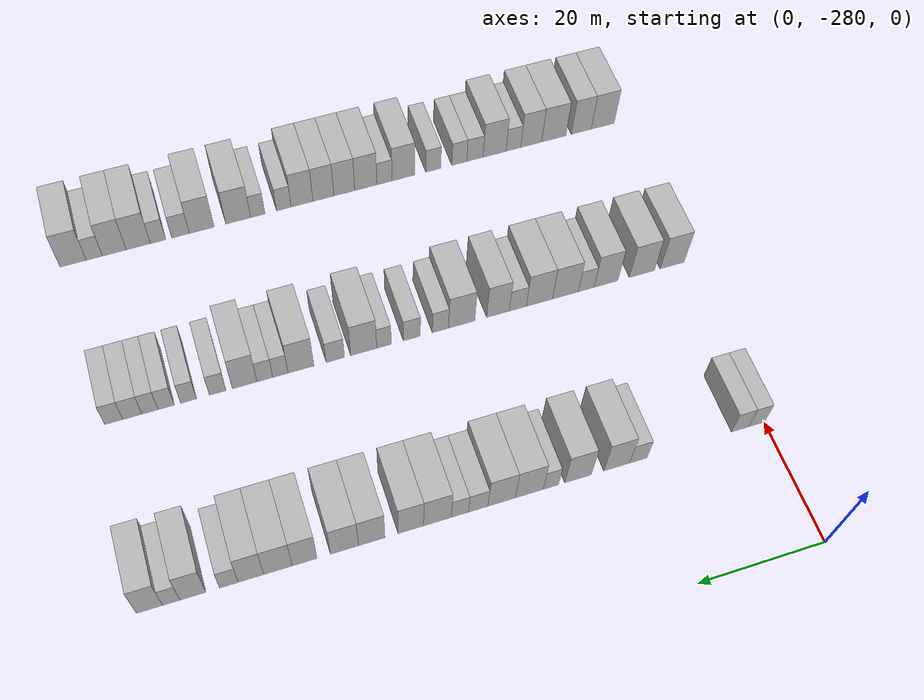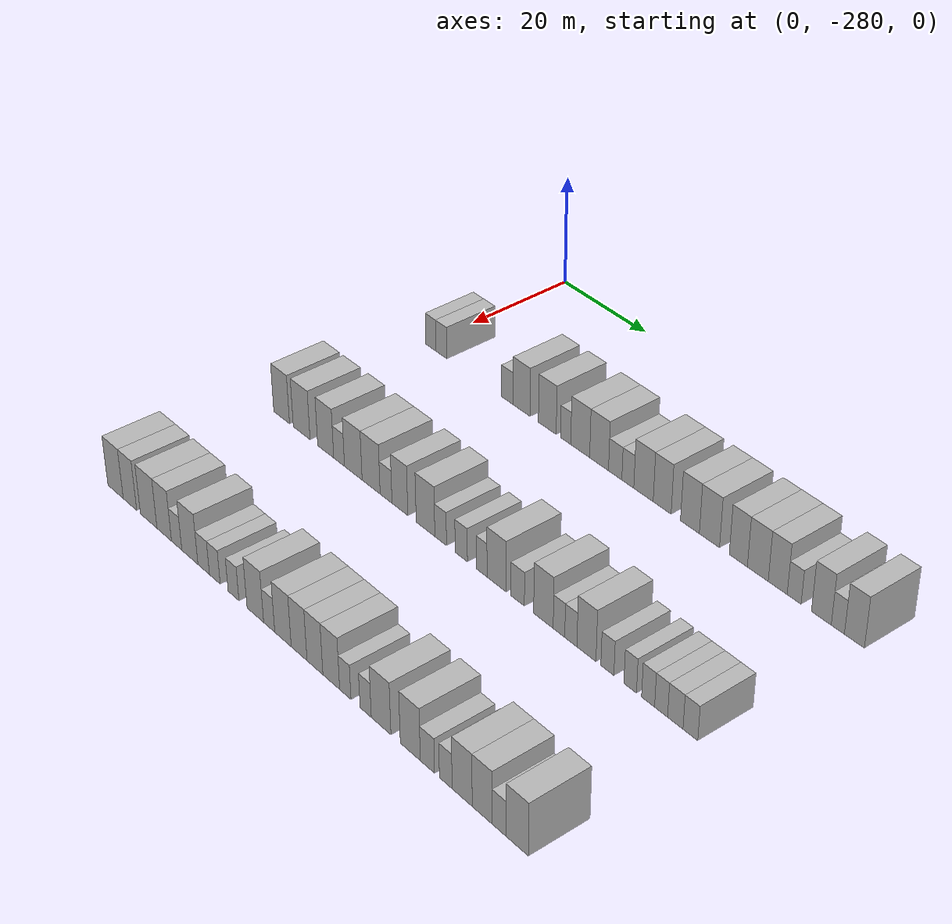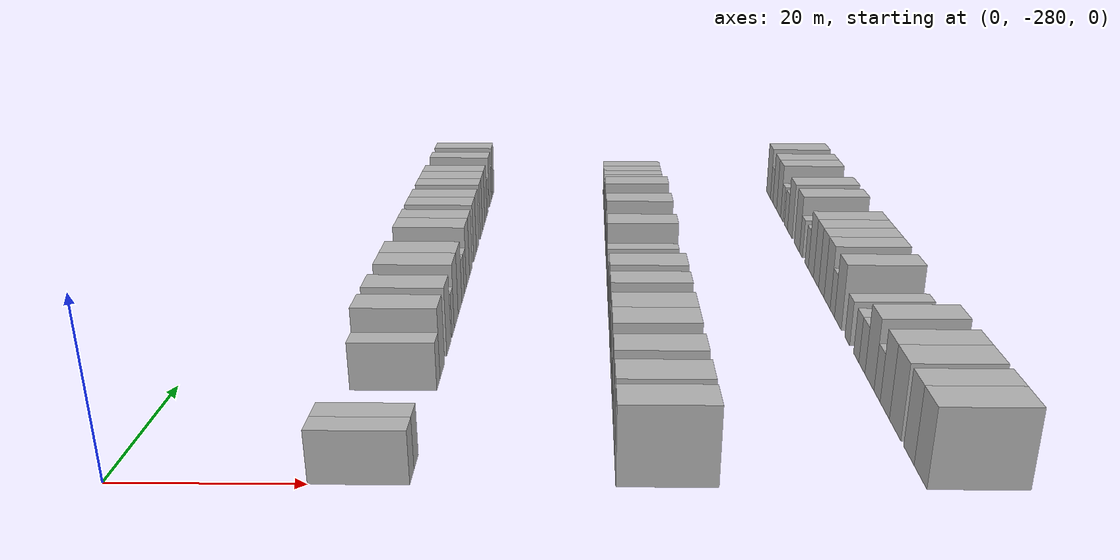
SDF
<sdf version="1.6">
 <world name="default">
  <model name="building_1">
   <static>1</static>
   <pose>25.0000 -278.6719 0 0.000000 0.000000 0.000000</pose>
   <link name="link">
    <pose>0 0 3.00 0 0 0</pose>
    <collision name="collision"><geometry><box><size>10.0000 2.6562 6.0000</size></box></geometry></collision>
    <visual name="visual">
     <cast_shadows>0</cast_shadows>
     <geometry><box><size>10.0000 2.6562 6.0000</size></box></geometry>
     <material>
      <script>
       <uri>model://HANNAS_wall/materials/scripts</uri>
       <uri>model://HANNAS_wall/materials/textures</uri>
       <name>vrc/HANNAS_wall</name>
      </script>
     </material>
    </visual>
   </link>
  </model>
  <model name="building_2">
   <static>1</static>
   <pose>25.0000 -275.9168 0 0.000000 0.000000 0.000000</pose>
   <link name="link">
    <pose>0 0 3.00 0 0 0</pose>
    <collision name="collision"><geometry><box><size>10.0000 2.8541 6.0000</size></box></geometry></collision>
    <visual name="visual">
     <cast_shadows>0</cast_shadows>
     <geometry><box><size>10.0000 2.8541 6.0000</size></box></geometry>
     <material>
      <script>
       <uri>model://HANNAS_wall/materials/scripts</uri>
       <uri>model://HANNAS_wall/materials/textures</uri>
       <name>vrc/HANNAS_wall</name>
      </script>
     </material>
    </visual>
   </link>
  </model>
  <model name="building_3">
   <static>1</static>
   <pose>25.0000 -259.2466 0 0.000000 0.000000 0.000000</pose>
   <link name="link">
    <pose>0 0 3.00 0 0 0</pose>
    <collision name="collision"><geometry><box><size>10.0000 2.8287 6.0000</size></box></geometry></collision>
    <visual name="visual">
     <cast_shadows>0</cast_shadows>
     <geometry><box><size>10.0000 2.8287 6.0000</size></box></geometry>
     <material>
      <script>
       <uri>model://HANNAS_wall/materials/scripts</uri>
       <uri>model://HANNAS_wall/materials/textures</uri>
       <name>vrc/HANNAS_wall</name>
      </script>
     </material>
    </visual>
   </link>
  </model>
  <model name="building_4">
   <static>1</static>
   <pose>25.0000 -255.7663 0 0.000000 0.000000 0.000000</pose>
   <link name="link">
    <pose>0 0 4.50 0 0 0</pose>
    <collision name="collision"><geometry><box><size>10.0000 4.1318 9.0000</size></box></geometry></collision>
    <visual name="visual">
     <cast_shadows>0</cast_shadows>
     <geometry><box><size>10.0000 4.1318 9.0000</size></box></geometry>
     <material>
      <script>
       <uri>model://HANNAS_wall/materials/scripts</uri>
       <uri>model://HANNAS_wall/materials/textures</uri>
       <name>vrc/HANNAS_wall</name>
      </script>
     </material>
    </visual>
   </link>
  </model>
  <model name="building_5">
   <static>1</static>
   <pose>25.0000 -249.5898 0 0.000000 0.000000 0.000000</pose>
   <link name="link">
    <pose>0 0 4.50 0 0 0</pose>
    <collision name="collision"><geometry><box><size>10.0000 4.2212 9.0000</size></box></geometry></collision>
    <visual name="visual">
     <cast_shadows>0</cast_shadows>
     <geometry><box><size>10.0000 4.2212 9.0000</size></box></geometry>
     <material>
      <script>
       <uri>model://HANNAS_wall/materials/scripts</uri>
       <uri>model://HANNAS_wall/materials/textures</uri>
       <name>vrc/HANNAS_wall</name>
      </script>
     </material>
    </visual>
   </link>
  </model>
  <model name="building_6">
   <static>1</static>
   <pose>25.0000 -245.2765 0 0.000000 0.000000 0.000000</pose>
   <link name="link">
    <pose>0 0 3.00 0 0 0</pose>
    <collision name="collision"><geometry><box><size>10.0000 2.4053 6.0000</size></box></geometry></collision>
    <visual name="visual">
     <cast_shadows>0</cast_shadows>
     <geometry><box><size>10.0000 2.4053 6.0000</size></box></geometry>
     <material>
      <script>
       <uri>model://HANNAS_wall/materials/scripts</uri>
       <uri>model://HANNAS_wall/materials/textures</uri>
       <name>vrc/HANNAS_wall</name>
      </script>
     </material>
    </visual>
   </link>
  </model>
  <model name="building_7">
   <static>1</static>
   <pose>25.0000 -241.8854 0 0.000000 0.000000 0.000000</pose>
   <link name="link">
    <pose>0 0 4.50 0 0 0</pose>
    <collision name="collision"><geometry><box><size>10.0000 4.3769 9.0000</size></box></geometry></collision>
    <visual name="visual">
     <cast_shadows>0</cast_shadows>
     <geometry><box><size>10.0000 4.3769 9.0000</size></box></geometry>
     <material>
      <script>
       <uri>model://HANNAS_wall/materials/scripts</uri>
       <uri>model://HANNAS_wall/materials/textures</uri>
       <name>vrc/HANNAS_wall</name>
      </script>
     </material>
    </visual>
   </link>
  </model>
  <model name="building_8">
   <static>1</static>
   <pose>25.0000 -237.5531 0 0.000000 0.000000 0.000000</pose>
   <link name="link">
    <pose>0 0 4.50 0 0 0</pose>
    <collision name="collision"><geometry><box><size>10.0000 4.2877 9.0000</size></box></geometry></collision>
    <visual name="visual">
     <cast_shadows>0</cast_shadows>
     <geometry><box><size>10.0000 4.2877 9.0000</size></box></geometry>
     <material>
      <script>
       <uri>model://HANNAS_wall/materials/scripts</uri>
       <uri>model://HANNAS_wall/materials/textures</uri>
       <name>vrc/HANNAS_wall</name>
      </script>
     </material>
    </visual>
   </link>
  </model>
  <model name="building_9">
   <static>1</static>
   <pose>25.0000 -233.9128 0 0.000000 0.000000 0.000000</pose>
   <link name="link">
    <pose>0 0 3.00 0 0 0</pose>
    <collision name="collision"><geometry><box><size>10.0000 2.9928 6.0000</size></box></geometry></collision>
    <visual name="visual">
     <cast_shadows>0</cast_shadows>
     <geometry><box><size>10.0000 2.9928 6.0000</size></box></geometry>
     <material>
      <script>
       <uri>model://HANNAS_wall/materials/scripts</uri>
       <uri>model://HANNAS_wall/materials/textures</uri>
       <name>vrc/HANNAS_wall</name>
      </script>
     </material>
    </visual>
   </link>
  </model>
  <model name="building_10">
   <static>1</static>
   <pose>25.0000 -231.0896 0 0.000000 0.000000 0.000000</pose>
   <link name="link">
    <pose>0 0 3.00 0 0 0</pose>
    <collision name="collision"><geometry><box><size>10.0000 2.6537 6.0000</size></box></geometry></collision>
    <visual name="visual">
     <cast_shadows>0</cast_shadows>
     <geometry><box><size>10.0000 2.6537 6.0000</size></box></geometry>
     <material>
      <script>
       <uri>model://HANNAS_wall/materials/scripts</uri>
       <uri>model://HANNAS_wall/materials/textures</uri>
       <name>vrc/HANNAS_wall</name>
      </script>
     </material>
    </visual>
   </link>
  </model>
  <model name="building_11">
   <static>1</static>
   <pose>25.0000 -227.6349 0 0.000000 0.000000 0.000000</pose>
   <link name="link">
    <pose>0 0 4.50 0 0 0</pose>
    <collision name="collision"><geometry><box><size>10.0000 4.2556 9.0000</size></box></geometry></collision>
    <visual name="visual">
     <cast_shadows>0</cast_shadows>
     <geometry><box><size>10.0000 4.2556 9.0000</size></box></geometry>
     <material>
      <script>
       <uri>model://HANNAS_wall/materials/scripts</uri>
       <uri>model://HANNAS_wall/materials/textures</uri>
       <name>vrc/HANNAS_wall</name>
      </script>
     </material>
    </visual>
   </link>
  </model>
  <model name="building_12">
   <static>1</static>
   <pose>25.0000 -223.5689 0 0.000000 0.000000 0.000000</pose>
   <link name="link">
    <pose>0 0 4.50 0 0 0</pose>
    <collision name="collision"><geometry><box><size>10.0000 3.8763 9.0000</size></box></geometry></collision>
    <visual name="visual">
     <cast_shadows>0</cast_shadows>
     <geometry><box><size>10.0000 3.8763 9.0000</size></box></geometry>
     <material>
      <script>
       <uri>model://HANNAS_wall/materials/scripts</uri>
       <uri>model://HANNAS_wall/materials/textures</uri>
       <name>vrc/HANNAS_wall</name>
      </script>
     </material>
    </visual>
   </link>
  </model>
  <model name="building_13">
   <static>1</static>
   <pose>25.0000 -217.6394 0 0.000000 0.000000 0.000000</pose>
   <link name="link">
    <pose>0 0 4.50 0 0 0</pose>
    <collision name="collision"><geometry><box><size>10.0000 3.9828 9.0000</size></box></geometry></collision>
    <visual name="visual">
     <cast_shadows>0</cast_shadows>
     <geometry><box><size>10.0000 3.9828 9.0000</size></box></geometry>
     <material>
      <script>
       <uri>model://HANNAS_wall/materials/scripts</uri>
       <uri>model://HANNAS_wall/materials/textures</uri>
       <name>vrc/HANNAS_wall</name>
      </script>
     </material>
    </visual>
   </link>
  </model>
  <model name="building_14">
   <static>1</static>
   <pose>25.0000 -213.5491 0 0.000000 0.000000 0.000000</pose>
   <link name="link">
    <pose>0 0 4.50 0 0 0</pose>
    <collision name="collision"><geometry><box><size>10.0000 4.1977 9.0000</size></box></geometry></collision>
    <visual name="visual">
     <cast_shadows>0</cast_shadows>
     <geometry><box><size>10.0000 4.1977 9.0000</size></box></geometry>
     <material>
      <script>
       <uri>model://HANNAS_wall/materials/scripts</uri>
       <uri>model://HANNAS_wall/materials/textures</uri>
       <name>vrc/HANNAS_wall</name>
      </script>
     </material>
    </visual>
   </link>
  </model>
  <model name="building_15">
   <static>1</static>
   <pose>25.0000 -207.6139 0 0.000000 0.000000 0.000000</pose>
   <link name="link">
    <pose>0 0 4.50 0 0 0</pose>
    <collision name="collision"><geometry><box><size>10.0000 3.6728 9.0000</size></box></geometry></collision>
    <visual name="visual">
     <cast_shadows>0</cast_shadows>
     <geometry><box><size>10.0000 3.6728 9.0000</size></box></geometry>
     <material>
      <script>
       <uri>model://HANNAS_wall/materials/scripts</uri>
       <uri>model://HANNAS_wall/materials/textures</uri>
       <name>vrc/HANNAS_wall</name>
      </script>
     </material>
    </visual>
   </link>
  </model>
  <model name="building_16">
   <static>1</static>
   <pose>25.0000 -203.6888 0 0.000000 0.000000 0.000000</pose>
   <link name="link">
    <pose>0 0 4.50 0 0 0</pose>
    <collision name="collision"><geometry><box><size>10.0000 4.1775 9.0000</size></box></geometry></collision>
    <visual name="visual">
     <cast_shadows>0</cast_shadows>
     <geometry><box><size>10.0000 4.1775 9.0000</size></box></geometry>
     <material>
      <script>
       <uri>model://HANNAS_wall/materials/scripts</uri>
       <uri>model://HANNAS_wall/materials/textures</uri>
       <name>vrc/HANNAS_wall</name>
      </script>
     </material>
    </visual>
   </link>
  </model>
  <model name="building_17">
   <static>1</static>
   <pose>25.0000 -199.7320 0 0.000000 0.000000 0.000000</pose>
   <link name="link">
    <pose>0 0 4.50 0 0 0</pose>
    <collision name="collision"><geometry><box><size>10.0000 3.7362 9.0000</size></box></geometry></collision>
    <visual name="visual">
     <cast_shadows>0</cast_shadows>
     <geometry><box><size>10.0000 3.7362 9.0000</size></box></geometry>
     <material>
      <script>
       <uri>model://HANNAS_wall/materials/scripts</uri>
       <uri>model://HANNAS_wall/materials/textures</uri>
       <name>vrc/HANNAS_wall</name>
      </script>
     </material>
    </visual>
   </link>
  </model>
  <model name="building_18">
   <static>1</static>
   <pose>25.0000 -196.5083 0 0.000000 0.000000 0.000000</pose>
   <link name="link">
    <pose>0 0 3.00 0 0 0</pose>
    <collision name="collision"><geometry><box><size>10.0000 2.7112 6.0000</size></box></geometry></collision>
    <visual name="visual">
     <cast_shadows>0</cast_shadows>
     <geometry><box><size>10.0000 2.7112 6.0000</size></box></geometry>
     <material>
      <script>
       <uri>model://HANNAS_wall/materials/scripts</uri>
       <uri>model://HANNAS_wall/materials/textures</uri>
       <name>vrc/HANNAS_wall</name>
      </script>
     </material>
    </visual>
   </link>
  </model>
  <model name="building_19">
   <static>1</static>
   <pose>25.0000 -191.2701 0 0.000000 0.000000 0.000000</pose>
   <link name="link">
    <pose>0 0 4.50 0 0 0</pose>
    <collision name="collision"><geometry><box><size>10.0000 3.7651 9.0000</size></box></geometry></collision>
    <visual name="visual">
     <cast_shadows>0</cast_shadows>
     <geometry><box><size>10.0000 3.7651 9.0000</size></box></geometry>
     <material>
      <script>
       <uri>model://HANNAS_wall/materials/scripts</uri>
       <uri>model://HANNAS_wall/materials/textures</uri>
       <name>vrc/HANNAS_wall</name>
      </script>
     </material>
    </visual>
   </link>
  </model>
  <model name="building_20">
   <static>1</static>
   <pose>25.0000 -188.1491 0 0.000000 0.000000 0.000000</pose>
   <link name="link">
    <pose>0 0 3.00 0 0 0</pose>
    <collision name="collision"><geometry><box><size>10.0000 2.4771 6.0000</size></box></geometry></collision>
    <visual name="visual">
     <cast_shadows>0</cast_shadows>
     <geometry><box><size>10.0000 2.4771 6.0000</size></box></geometry>
     <material>
      <script>
       <uri>model://HANNAS_wall/materials/scripts</uri>
       <uri>model://HANNAS_wall/materials/textures</uri>
       <name>vrc/HANNAS_wall</name>
      </script>
     </material>
    </visual>
   </link>
  </model>
  <model name="building_21">
   <static>1</static>
   <pose>25.0000 -185.0525 0 0.000000 0.000000 0.000000</pose>
   <link name="link">
    <pose>0 0 4.50 0 0 0</pose>
    <collision name="collision"><geometry><box><size>10.0000 3.7161 9.0000</size></box></geometry></collision>
    <visual name="visual">
     <cast_shadows>0</cast_shadows>
     <geometry><box><size>10.0000 3.7161 9.0000</size></box></geometry>
     <material>
      <script>
       <uri>model://HANNAS_wall/materials/scripts</uri>
       <uri>model://HANNAS_wall/materials/textures</uri>
       <name>vrc/HANNAS_wall</name>
      </script>
     </material>
    </visual>
   </link>
  </model>
  <model name="building_147">
   <static>1</static>
   <pose>55.0000 -277.8851 0 0.000000 0.000000 0.000000</pose>
   <link name="link">
    <pose>0 0 4.50 0 0 0</pose>
    <collision name="collision"><geometry><box><size>10.0000 4.2297 9.0000</size></box></geometry></collision>
    <visual name="visual">
     <cast_shadows>0</cast_shadows>
     <geometry><box><size>10.0000 4.2297 9.0000</size></box></geometry>
     <material>
      <script>
       <uri>model://HANNAS_wall/materials/scripts</uri>
       <uri>model://HANNAS_wall/materials/textures</uri>
       <name>vrc/HANNAS_wall</name>
      </script>
     </material>
    </visual>
   </link>
  </model>
  <model name="building_148">
   <static>1</static>
   <pose>55.0000 -272.5545 0 0.000000 0.000000 0.000000</pose>
   <link name="link">
    <pose>0 0 4.50 0 0 0</pose>
    <collision name="collision"><geometry><box><size>10.0000 4.4316 9.0000</size></box></geometry></collision>
    <visual name="visual">
     <cast_shadows>0</cast_shadows>
     <geometry><box><size>10.0000 4.4316 9.0000</size></box></geometry>
     <material>
      <script>
       <uri>model://HANNAS_wall/materials/scripts</uri>
       <uri>model://HANNAS_wall/materials/textures</uri>
       <name>vrc/HANNAS_wall</name>
      </script>
     </material>
    </visual>
   </link>
  </model>
  <model name="building_149">
   <static>1</static>
   <pose>55.0000 -266.2629 0 0.000000 0.000000 0.000000</pose>
   <link name="link">
    <pose>0 0 4.50 0 0 0</pose>
    <collision name="collision"><geometry><box><size>10.0000 4.1516 9.0000</size></box></geometry></collision>
    <visual name="visual">
     <cast_shadows>0</cast_shadows>
     <geometry><box><size>10.0000 4.1516 9.0000</size></box></geometry>
     <material>
      <script>
       <uri>model://HANNAS_wall/materials/scripts</uri>
       <uri>model://HANNAS_wall/materials/textures</uri>
       <name>vrc/HANNAS_wall</name>
      </script>
     </material>
    </visual>
   </link>
  </model>
  <model name="building_150">
   <static>1</static>
   <pose>55.0000 -262.8139 0 0.000000 0.000000 0.000000</pose>
   <link name="link">
    <pose>0 0 3.00 0 0 0</pose>
    <collision name="collision"><geometry><box><size>10.0000 2.7465 6.0000</size></box></geometry></collision>
    <visual name="visual">
     <cast_shadows>0</cast_shadows>
     <geometry><box><size>10.0000 2.7465 6.0000</size></box></geometry>
     <material>
      <script>
       <uri>model://HANNAS_wall/materials/scripts</uri>
       <uri>model://HANNAS_wall/materials/textures</uri>
       <name>vrc/HANNAS_wall</name>
      </script>
     </material>
    </visual>
   </link>
  </model>
  <model name="building_151">
   <static>1</static>
   <pose>55.0000 -259.2217 0 0.000000 0.000000 0.000000</pose>
   <link name="link">
    <pose>0 0 4.50 0 0 0</pose>
    <collision name="collision"><geometry><box><size>10.0000 4.4379 9.0000</size></box></geometry></collision>
    <visual name="visual">
     <cast_shadows>0</cast_shadows>
     <geometry><box><size>10.0000 4.4379 9.0000</size></box></geometry>
     <material>
      <script>
       <uri>model://HANNAS_wall/materials/scripts</uri>
       <uri>model://HANNAS_wall/materials/textures</uri>
       <name>vrc/HANNAS_wall</name>
      </script>
     </material>
    </visual>
   </link>
  </model>
  <model name="building_152">
   <static>1</static>
   <pose>55.0000 -254.7670 0 0.000000 0.000000 0.000000</pose>
   <link name="link">
    <pose>0 0 4.50 0 0 0</pose>
    <collision name="collision"><geometry><box><size>10.0000 4.4715 9.0000</size></box></geometry></collision>
    <visual name="visual">
     <cast_shadows>0</cast_shadows>
     <geometry><box><size>10.0000 4.4715 9.0000</size></box></geometry>
     <material>
      <script>
       <uri>model://HANNAS_wall/materials/scripts</uri>
       <uri>model://HANNAS_wall/materials/textures</uri>
       <name>vrc/HANNAS_wall</name>
      </script>
     </material>
    </visual>
   </link>
  </model>
  <model name="building_153">
   <static>1</static>
   <pose>55.0000 -251.0787 0 0.000000 0.000000 0.000000</pose>
   <link name="link">
    <pose>0 0 3.00 0 0 0</pose>
    <collision name="collision"><geometry><box><size>10.0000 2.9051 6.0000</size></box></geometry></collision>
    <visual name="visual">
     <cast_shadows>0</cast_shadows>
     <geometry><box><size>10.0000 2.9051 6.0000</size></box></geometry>
     <material>
      <script>
       <uri>model://HANNAS_wall/materials/scripts</uri>
       <uri>model://HANNAS_wall/materials/textures</uri>
       <name>vrc/HANNAS_wall</name>
      </script>
     </material>
    </visual>
   </link>
  </model>
  <model name="building_154">
   <static>1</static>
   <pose>55.0000 -247.7133 0 0.000000 0.000000 0.000000</pose>
   <link name="link">
    <pose>0 0 4.50 0 0 0</pose>
    <collision name="collision"><geometry><box><size>10.0000 3.8258 9.0000</size></box></geometry></collision>
    <visual name="visual">
     <cast_shadows>0</cast_shadows>
     <geometry><box><size>10.0000 3.8258 9.0000</size></box></geometry>
     <material>
      <script>
       <uri>model://HANNAS_wall/materials/scripts</uri>
       <uri>model://HANNAS_wall/materials/textures</uri>
       <name>vrc/HANNAS_wall</name>
      </script>
     </material>
    </visual>
   </link>
  </model>
  <model name="building_155">
   <static>1</static>
   <pose>55.0000 -241.6032 0 0.000000 0.000000 0.000000</pose>
   <link name="link">
    <pose>0 0 4.50 0 0 0</pose>
    <collision name="collision"><geometry><box><size>10.0000 4.3944 9.0000</size></box></geometry></collision>
    <visual name="visual">
     <cast_shadows>0</cast_shadows>
     <geometry><box><size>10.0000 4.3944 9.0000</size></box></geometry>
     <material>
      <script>
       <uri>model://HANNAS_wall/materials/scripts</uri>
       <uri>model://HANNAS_wall/materials/textures</uri>
       <name>vrc/HANNAS_wall</name>
      </script>
     </material>
    </visual>
   </link>
  </model>
  <model name="building_156">
   <static>1</static>
   <pose>55.0000 -238.0489 0 0.000000 0.000000 0.000000</pose>
   <link name="link">
    <pose>0 0 3.00 0 0 0</pose>
    <collision name="collision"><geometry><box><size>10.0000 2.7142 6.0000</size></box></geometry></collision>
    <visual name="visual">
     <cast_shadows>0</cast_shadows>
     <geometry><box><size>10.0000 2.7142 6.0000</size></box></geometry>
     <material>
      <script>
       <uri>model://HANNAS_wall/materials/scripts</uri>
       <uri>model://HANNAS_wall/materials/textures</uri>
       <name>vrc/HANNAS_wall</name>
      </script>
     </material>
    </visual>
   </link>
  </model>
  <model name="building_157">
   <static>1</static>
   <pose>55.0000 -233.2929 0 0.000000 0.000000 0.000000</pose>
   <link name="link">
    <pose>0 0 3.00 0 0 0</pose>
    <collision name="collision"><geometry><box><size>10.0000 2.7978 6.0000</size></box></geometry></collision>
    <visual name="visual">
     <cast_shadows>0</cast_shadows>
     <geometry><box><size>10.0000 2.7978 6.0000</size></box></geometry>
     <material>
      <script>
       <uri>model://HANNAS_wall/materials/scripts</uri>
       <uri>model://HANNAS_wall/materials/textures</uri>
       <name>vrc/HANNAS_wall</name>
      </script>
     </material>
    </visual>
   </link>
  </model>
  <model name="building_158">
   <static>1</static>
   <pose>55.0000 -228.6891 0 0.000000 0.000000 0.000000</pose>
   <link name="link">
    <pose>0 0 3.00 0 0 0</pose>
    <collision name="collision"><geometry><box><size>10.0000 2.4097 6.0000</size></box></geometry></collision>
    <visual name="visual">
     <cast_shadows>0</cast_shadows>
     <geometry><box><size>10.0000 2.4097 6.0000</size></box></geometry>
     <material>
      <script>
       <uri>model://HANNAS_wall/materials/scripts</uri>
       <uri>model://HANNAS_wall/materials/textures</uri>
       <name>vrc/HANNAS_wall</name>
      </script>
     </material>
    </visual>
   </link>
  </model>
  <model name="building_159">
   <static>1</static>
   <pose>55.0000 -225.3676 0 0.000000 0.000000 0.000000</pose>
   <link name="link">
    <pose>0 0 4.50 0 0 0</pose>
    <collision name="collision"><geometry><box><size>10.0000 4.2333 9.0000</size></box></geometry></collision>
    <visual name="visual">
     <cast_shadows>0</cast_shadows>
     <geometry><box><size>10.0000 4.2333 9.0000</size></box></geometry>
     <material>
      <script>
       <uri>model://HANNAS_wall/materials/scripts</uri>
       <uri>model://HANNAS_wall/materials/textures</uri>
       <name>vrc/HANNAS_wall</name>
      </script>
     </material>
    </visual>
   </link>
  </model>
  <model name="building_160">
   <static>1</static>
   <pose>55.0000 -220.7635 0 0.000000 0.000000 0.000000</pose>
   <link name="link">
    <pose>0 0 3.00 0 0 0</pose>
    <collision name="collision"><geometry><box><size>10.0000 2.9750 6.0000</size></box></geometry></collision>
    <visual name="visual">
     <cast_shadows>0</cast_shadows>
     <geometry><box><size>10.0000 2.9750 6.0000</size></box></geometry>
     <material>
      <script>
       <uri>model://HANNAS_wall/materials/scripts</uri>
       <uri>model://HANNAS_wall/materials/textures</uri>
       <name>vrc/HANNAS_wall</name>
      </script>
     </material>
    </visual>
   </link>
  </model>
  <model name="building_161">
   <static>1</static>
   <pose>55.0000 -215.1988 0 0.000000 0.000000 0.000000</pose>
   <link name="link">
    <pose>0 0 4.50 0 0 0</pose>
    <collision name="collision"><geometry><box><size>10.0000 4.1543 9.0000</size></box></geometry></collision>
    <visual name="visual">
     <cast_shadows>0</cast_shadows>
     <geometry><box><size>10.0000 4.1543 9.0000</size></box></geometry>
     <material>
      <script>
       <uri>model://HANNAS_wall/materials/scripts</uri>
       <uri>model://HANNAS_wall/materials/textures</uri>
       <name>vrc/HANNAS_wall</name>
      </script>
     </material>
    </visual>
   </link>
  </model>
  <model name="building_162">
   <static>1</static>
   <pose>55.0000 -211.9054 0 0.000000 0.000000 0.000000</pose>
   <link name="link">
    <pose>0 0 3.00 0 0 0</pose>
    <collision name="collision"><geometry><box><size>10.0000 2.4326 6.0000</size></box></geometry></collision>
    <visual name="visual">
     <cast_shadows>0</cast_shadows>
     <geometry><box><size>10.0000 2.4326 6.0000</size></box></geometry>
     <material>
      <script>
       <uri>model://HANNAS_wall/materials/scripts</uri>
       <uri>model://HANNAS_wall/materials/textures</uri>
       <name>vrc/HANNAS_wall</name>
      </script>
     </material>
    </visual>
   </link>
  </model>
  <model name="building_163">
   <static>1</static>
   <pose>55.0000 -209.4249 0 0.000000 0.000000 0.000000</pose>
   <link name="link">
    <pose>0 0 3.00 0 0 0</pose>
    <collision name="collision"><geometry><box><size>10.0000 2.5284 6.0000</size></box></geometry></collision>
    <visual name="visual">
     <cast_shadows>0</cast_shadows>
     <geometry><box><size>10.0000 2.5284 6.0000</size></box></geometry>
     <material>
      <script>
       <uri>model://HANNAS_wall/materials/scripts</uri>
       <uri>model://HANNAS_wall/materials/textures</uri>
       <name>vrc/HANNAS_wall</name>
      </script>
     </material>
    </visual>
   </link>
  </model>
  <model name="building_164">
   <static>1</static>
   <pose>55.0000 -206.2072 0 0.000000 0.000000 0.000000</pose>
   <link name="link">
    <pose>0 0 4.50 0 0 0</pose>
    <collision name="collision"><geometry><box><size>10.0000 3.9069 9.0000</size></box></geometry></collision>
    <visual name="visual">
     <cast_shadows>0</cast_shadows>
     <geometry><box><size>10.0000 3.9069 9.0000</size></box></geometry>
     <material>
      <script>
       <uri>model://HANNAS_wall/materials/scripts</uri>
       <uri>model://HANNAS_wall/materials/textures</uri>
       <name>vrc/HANNAS_wall</name>
      </script>
     </material>
    </visual>
   </link>
  </model>
  <model name="building_165">
   <static>1</static>
   <pose>55.0000 -201.9400 0 0.000000 0.000000 0.000000</pose>
   <link name="link">
    <pose>0 0 3.00 0 0 0</pose>
    <collision name="collision"><geometry><box><size>10.0000 2.6274 6.0000</size></box></geometry></collision>
    <visual name="visual">
     <cast_shadows>0</cast_shadows>
     <geometry><box><size>10.0000 2.6274 6.0000</size></box></geometry>
     <material>
      <script>
       <uri>model://HANNAS_wall/materials/scripts</uri>
       <uri>model://HANNAS_wall/materials/textures</uri>
       <name>vrc/HANNAS_wall</name>
      </script>
     </material>
    </visual>
   </link>
  </model>
  <model name="building_166">
   <static>1</static>
   <pose>55.0000 -197.3832 0 0.000000 0.000000 0.000000</pose>
   <link name="link">
    <pose>0 0 3.00 0 0 0</pose>
    <collision name="collision"><geometry><box><size>10.0000 2.4862 6.0000</size></box></geometry></collision>
    <visual name="visual">
     <cast_shadows>0</cast_shadows>
     <geometry><box><size>10.0000 2.4862 6.0000</size></box></geometry>
     <material>
      <script>
       <uri>model://HANNAS_wall/materials/scripts</uri>
       <uri>model://HANNAS_wall/materials/textures</uri>
       <name>vrc/HANNAS_wall</name>
      </script>
     </material>
    </visual>
   </link>
  </model>
  <model name="building_167">
   <static>1</static>
   <pose>55.0000 -193.8683 0 0.000000 0.000000 0.000000</pose>
   <link name="link">
    <pose>0 0 3.00 0 0 0</pose>
    <collision name="collision"><geometry><box><size>10.0000 2.5436 6.0000</size></box></geometry></collision>
    <visual name="visual">
     <cast_shadows>0</cast_shadows>
     <geometry><box><size>10.0000 2.5436 6.0000</size></box></geometry>
     <material>
      <script>
       <uri>model://HANNAS_wall/materials/scripts</uri>
       <uri>model://HANNAS_wall/materials/textures</uri>
       <name>vrc/HANNAS_wall</name>
      </script>
     </material>
    </visual>
   </link>
  </model>
  <model name="building_168">
   <static>1</static>
   <pose>55.0000 -191.3441 0 0.000000 0.000000 0.000000</pose>
   <link name="link">
    <pose>0 0 3.00 0 0 0</pose>
    <collision name="collision"><geometry><box><size>10.0000 2.5047 6.0000</size></box></geometry></collision>
    <visual name="visual">
     <cast_shadows>0</cast_shadows>
     <geometry><box><size>10.0000 2.5047 6.0000</size></box></geometry>
     <material>
      <script>
       <uri>model://HANNAS_wall/materials/scripts</uri>
       <uri>model://HANNAS_wall/materials/textures</uri>
       <name>vrc/HANNAS_wall</name>
      </script>
     </material>
    </visual>
   </link>
  </model>
  <model name="building_169">
   <static>1</static>
   <pose>55.0000 -188.6165 0 0.000000 0.000000 0.000000</pose>
   <link name="link">
    <pose>0 0 3.00 0 0 0</pose>
    <collision name="collision"><geometry><box><size>10.0000 2.9505 6.0000</size></box></geometry></collision>
    <visual name="visual">
     <cast_shadows>0</cast_shadows>
     <geometry><box><size>10.0000 2.9505 6.0000</size></box></geometry>
     <material>
      <script>
       <uri>model://HANNAS_wall/materials/scripts</uri>
       <uri>model://HANNAS_wall/materials/textures</uri>
       <name>vrc/HANNAS_wall</name>
      </script>
     </material>
    </visual>
   </link>
  </model>
  <model name="building_170">
   <static>1</static>
   <pose>55.0000 -185.7485 0 0.000000 0.000000 0.000000</pose>
   <link name="link">
    <pose>0 0 3.00 0 0 0</pose>
    <collision name="collision"><geometry><box><size>10.0000 2.7854 6.0000</size></box></geometry></collision>
    <visual name="visual">
     <cast_shadows>0</cast_shadows>
     <geometry><box><size>10.0000 2.7854 6.0000</size></box></geometry>
     <material>
      <script>
       <uri>model://HANNAS_wall/materials/scripts</uri>
       <uri>model://HANNAS_wall/materials/textures</uri>
       <name>vrc/HANNAS_wall</name>
      </script>
     </material>
    </visual>
   </link>
  </model>
  <model name="building_287">
   <static>1</static>
   <pose>85.0000 -277.8527 0 0.000000 0.000000 0.000000</pose>
   <link name="link">
    <pose>0 0 4.50 0 0 0</pose>
    <collision name="collision"><geometry><box><size>10.0000 4.2946 9.0000</size></box></geometry></collision>
    <visual name="visual">
     <cast_shadows>0</cast_shadows>
     <geometry><box><size>10.0000 4.2946 9.0000</size></box></geometry>
     <material>
      <script>
       <uri>model://HANNAS_wall/materials/scripts</uri>
       <uri>model://HANNAS_wall/materials/textures</uri>
       <name>vrc/HANNAS_wall</name>
      </script>
     </material>
    </visual>
   </link>
  </model>
  <model name="building_288">
   <static>1</static>
   <pose>85.0000 -273.8466 0 0.000000 0.000000 0.000000</pose>
   <link name="link">
    <pose>0 0 4.50 0 0 0</pose>
    <collision name="collision"><geometry><box><size>10.0000 3.7176 9.0000</size></box></geometry></collision>
    <visual name="visual">
     <cast_shadows>0</cast_shadows>
     <geometry><box><size>10.0000 3.7176 9.0000</size></box></geometry>
     <material>
      <script>
       <uri>model://HANNAS_wall/materials/scripts</uri>
       <uri>model://HANNAS_wall/materials/textures</uri>
       <name>vrc/HANNAS_wall</name>
      </script>
     </material>
    </visual>
   </link>
  </model>
  <model name="building_289">
   <static>1</static>
   <pose>85.0000 -268.7380 0 0.000000 0.000000 0.000000</pose>
   <link name="link">
    <pose>0 0 4.50 0 0 0</pose>
    <collision name="collision"><geometry><box><size>10.0000 4.4996 9.0000</size></box></geometry></collision>
    <visual name="visual">
     <cast_shadows>0</cast_shadows>
     <geometry><box><size>10.0000 4.4996 9.0000</size></box></geometry>
     <material>
      <script>
       <uri>model://HANNAS_wall/materials/scripts</uri>
       <uri>model://HANNAS_wall/materials/textures</uri>
       <name>vrc/HANNAS_wall</name>
      </script>
     </material>
    </visual>
   </link>
  </model>
  <model name="building_290">
   <static>1</static>
   <pose>85.0000 -264.5565 0 0.000000 0.000000 0.000000</pose>
   <link name="link">
    <pose>0 0 4.50 0 0 0</pose>
    <collision name="collision"><geometry><box><size>10.0000 3.8636 9.0000</size></box></geometry></collision>
    <visual name="visual">
     <cast_shadows>0</cast_shadows>
     <geometry><box><size>10.0000 3.8636 9.0000</size></box></geometry>
     <material>
      <script>
       <uri>model://HANNAS_wall/materials/scripts</uri>
       <uri>model://HANNAS_wall/materials/textures</uri>
       <name>vrc/HANNAS_wall</name>
      </script>
     </material>
    </visual>
   </link>
  </model>
  <model name="building_291">
   <static>1</static>
   <pose>85.0000 -261.2672 0 0.000000 0.000000 0.000000</pose>
   <link name="link">
    <pose>0 0 3.00 0 0 0</pose>
    <collision name="collision"><geometry><box><size>10.0000 2.7149 6.0000</size></box></geometry></collision>
    <visual name="visual">
     <cast_shadows>0</cast_shadows>
     <geometry><box><size>10.0000 2.7149 6.0000</size></box></geometry>
     <material>
      <script>
       <uri>model://HANNAS_wall/materials/scripts</uri>
       <uri>model://HANNAS_wall/materials/textures</uri>
       <name>vrc/HANNAS_wall</name>
      </script>
     </material>
    </visual>
   </link>
  </model>
  <model name="building_292">
   <static>1</static>
   <pose>85.0000 -257.8121 0 0.000000 0.000000 0.000000</pose>
   <link name="link">
    <pose>0 0 4.50 0 0 0</pose>
    <collision name="collision"><geometry><box><size>10.0000 4.1953 9.0000</size></box></geometry></collision>
    <visual name="visual">
     <cast_shadows>0</cast_shadows>
     <geometry><box><size>10.0000 4.1953 9.0000</size></box></geometry>
     <material>
      <script>
       <uri>model://HANNAS_wall/materials/scripts</uri>
       <uri>model://HANNAS_wall/materials/textures</uri>
       <name>vrc/HANNAS_wall</name>
      </script>
     </material>
    </visual>
   </link>
  </model>
  <model name="building_293">
   <static>1</static>
   <pose>85.0000 -254.2456 0 0.000000 0.000000 0.000000</pose>
   <link name="link">
    <pose>0 0 3.00 0 0 0</pose>
    <collision name="collision"><geometry><box><size>10.0000 2.9379 6.0000</size></box></geometry></collision>
    <visual name="visual">
     <cast_shadows>0</cast_shadows>
     <geometry><box><size>10.0000 2.9379 6.0000</size></box></geometry>
     <material>
      <script>
       <uri>model://HANNAS_wall/materials/scripts</uri>
       <uri>model://HANNAS_wall/materials/textures</uri>
       <name>vrc/HANNAS_wall</name>
      </script>
     </material>
    </visual>
   </link>
  </model>
  <model name="building_294">
   <static>1</static>
   <pose>85.0000 -251.4183 0 0.000000 0.000000 0.000000</pose>
   <link name="link">
    <pose>0 0 3.00 0 0 0</pose>
    <collision name="collision"><geometry><box><size>10.0000 2.7167 6.0000</size></box></geometry></collision>
    <visual name="visual">
     <cast_shadows>0</cast_shadows>
     <geometry><box><size>10.0000 2.7167 6.0000</size></box></geometry>
     <material>
      <script>
       <uri>model://HANNAS_wall/materials/scripts</uri>
       <uri>model://HANNAS_wall/materials/textures</uri>
       <name>vrc/HANNAS_wall</name>
      </script>
     </material>
    </visual>
   </link>
  </model>
  <model name="building_295">
   <static>1</static>
   <pose>85.0000 -246.7216 0 0.000000 0.000000 0.000000</pose>
   <link name="link">
    <pose>0 0 3.00 0 0 0</pose>
    <collision name="collision"><geometry><box><size>10.0000 2.6767 6.0000</size></box></geometry></collision>
    <visual name="visual">
     <cast_shadows>0</cast_shadows>
     <geometry><box><size>10.0000 2.6767 6.0000</size></box></geometry>
     <material>
      <script>
       <uri>model://HANNAS_wall/materials/scripts</uri>
       <uri>model://HANNAS_wall/materials/textures</uri>
       <name>vrc/HANNAS_wall</name>
      </script>
     </material>
    </visual>
   </link>
  </model>
  <model name="building_296">
   <static>1</static>
   <pose>85.0000 -241.3626 0 0.000000 0.000000 0.000000</pose>
   <link name="link">
    <pose>0 0 4.50 0 0 0</pose>
    <collision name="collision"><geometry><box><size>10.0000 4.0412 9.0000</size></box></geometry></collision>
    <visual name="visual">
     <cast_shadows>0</cast_shadows>
     <geometry><box><size>10.0000 4.0412 9.0000</size></box></geometry>
     <material>
      <script>
       <uri>model://HANNAS_wall/materials/scripts</uri>
       <uri>model://HANNAS_wall/materials/textures</uri>
       <name>vrc/HANNAS_wall</name>
      </script>
     </material>
    </visual>
   </link>
  </model>
  <model name="building_297">
   <static>1</static>
   <pose>85.0000 -238.0060 0 0.000000 0.000000 0.000000</pose>
   <link name="link">
    <pose>0 0 3.00 0 0 0</pose>
    <collision name="collision"><geometry><box><size>10.0000 2.6721 6.0000</size></box></geometry></collision>
    <visual name="visual">
     <cast_shadows>0</cast_shadows>
     <geometry><box><size>10.0000 2.6721 6.0000</size></box></geometry>
     <material>
      <script>
       <uri>model://HANNAS_wall/materials/scripts</uri>
       <uri>model://HANNAS_wall/materials/textures</uri>
       <name>vrc/HANNAS_wall</name>
      </script>
     </material>
    </visual>
   </link>
  </model>
  <model name="building_298">
   <static>1</static>
   <pose>85.0000 -234.7198 0 0.000000 0.000000 0.000000</pose>
   <link name="link">
    <pose>0 0 4.50 0 0 0</pose>
    <collision name="collision"><geometry><box><size>10.0000 3.9002 9.0000</size></box></geometry></collision>
    <visual name="visual">
     <cast_shadows>0</cast_shadows>
     <geometry><box><size>10.0000 3.9002 9.0000</size></box></geometry>
     <material>
      <script>
       <uri>model://HANNAS_wall/materials/scripts</uri>
       <uri>model://HANNAS_wall/materials/textures</uri>
       <name>vrc/HANNAS_wall</name>
      </script>
     </material>
    </visual>
   </link>
  </model>
  <model name="building_299">
   <static>1</static>
   <pose>85.0000 -230.9265 0 0.000000 0.000000 0.000000</pose>
   <link name="link">
    <pose>0 0 4.50 0 0 0</pose>
    <collision name="collision"><geometry><box><size>10.0000 3.6865 9.0000</size></box></geometry></collision>
    <visual name="visual">
     <cast_shadows>0</cast_shadows>
     <geometry><box><size>10.0000 3.6865 9.0000</size></box></geometry>
     <material>
      <script>
       <uri>model://HANNAS_wall/materials/scripts</uri>
       <uri>model://HANNAS_wall/materials/textures</uri>
       <name>vrc/HANNAS_wall</name>
      </script>
     </material>
    </visual>
   </link>
  </model>
  <model name="building_300">
   <static>1</static>
   <pose>85.0000 -227.2582 0 0.000000 0.000000 0.000000</pose>
   <link name="link">
    <pose>0 0 4.50 0 0 0</pose>
    <collision name="collision"><geometry><box><size>10.0000 3.6500 9.0000</size></box></geometry></collision>
    <visual name="visual">
     <cast_shadows>0</cast_shadows>
     <geometry><box><size>10.0000 3.6500 9.0000</size></box></geometry>
     <material>
      <script>
       <uri>model://HANNAS_wall/materials/scripts</uri>
       <uri>model://HANNAS_wall/materials/textures</uri>
       <name>vrc/HANNAS_wall</name>
      </script>
     </material>
    </visual>
   </link>
  </model>
  <model name="building_301">
   <static>1</static>
   <pose>85.0000 -223.5363 0 0.000000 0.000000 0.000000</pose>
   <link name="link">
    <pose>0 0 4.50 0 0 0</pose>
    <collision name="collision"><geometry><box><size>10.0000 3.7937 9.0000</size></box></geometry></collision>
    <visual name="visual">
     <cast_shadows>0</cast_shadows>
     <geometry><box><size>10.0000 3.7937 9.0000</size></box></geometry>
     <material>
      <script>
       <uri>model://HANNAS_wall/materials/scripts</uri>
       <uri>model://HANNAS_wall/materials/textures</uri>
       <name>vrc/HANNAS_wall</name>
      </script>
     </material>
    </visual>
   </link>
  </model>
  <model name="building_302">
   <static>1</static>
   <pose>85.0000 -220.3774 0 0.000000 0.000000 0.000000</pose>
   <link name="link">
    <pose>0 0 3.00 0 0 0</pose>
    <collision name="collision"><geometry><box><size>10.0000 2.5240 6.0000</size></box></geometry></collision>
    <visual name="visual">
     <cast_shadows>0</cast_shadows>
     <geometry><box><size>10.0000 2.5240 6.0000</size></box></geometry>
     <material>
      <script>
       <uri>model://HANNAS_wall/materials/scripts</uri>
       <uri>model://HANNAS_wall/materials/textures</uri>
       <name>vrc/HANNAS_wall</name>
      </script>
     </material>
    </visual>
   </link>
  </model>
  <model name="building_303">
   <static>1</static>
   <pose>85.0000 -215.8812 0 0.000000 0.000000 0.000000</pose>
   <link name="link">
    <pose>0 0 3.00 0 0 0</pose>
    <collision name="collision"><geometry><box><size>10.0000 2.4683 6.0000</size></box></geometry></collision>
    <visual name="visual">
     <cast_shadows>0</cast_shadows>
     <geometry><box><size>10.0000 2.4683 6.0000</size></box></geometry>
     <material>
      <script>
       <uri>model://HANNAS_wall/materials/scripts</uri>
       <uri>model://HANNAS_wall/materials/textures</uri>
       <name>vrc/HANNAS_wall</name>
      </script>
     </material>
    </visual>
   </link>
  </model>
  <model name="building_304">
   <static>1</static>
   <pose>85.0000 -212.5221 0 0.000000 0.000000 0.000000</pose>
   <link name="link">
    <pose>0 0 4.50 0 0 0</pose>
    <collision name="collision"><geometry><box><size>10.0000 4.2499 9.0000</size></box></geometry></collision>
    <visual name="visual">
     <cast_shadows>0</cast_shadows>
     <geometry><box><size>10.0000 4.2499 9.0000</size></box></geometry>
     <material>
      <script>
       <uri>model://HANNAS_wall/materials/scripts</uri>
       <uri>model://HANNAS_wall/materials/textures</uri>
       <name>vrc/HANNAS_wall</name>
      </script>
     </material>
    </visual>
   </link>
  </model>
  <model name="building_305">
   <static>1</static>
   <pose>85.0000 -206.2928 0 0.000000 0.000000 0.000000</pose>
   <link name="link">
    <pose>0 0 4.50 0 0 0</pose>
    <collision name="collision"><geometry><box><size>10.0000 4.2087 9.0000</size></box></geometry></collision>
    <visual name="visual">
     <cast_shadows>0</cast_shadows>
     <geometry><box><size>10.0000 4.2087 9.0000</size></box></geometry>
     <material>
      <script>
       <uri>model://HANNAS_wall/materials/scripts</uri>
       <uri>model://HANNAS_wall/materials/textures</uri>
       <name>vrc/HANNAS_wall</name>
      </script>
     </material>
    </visual>
   </link>
  </model>
  <model name="building_306">
   <static>1</static>
   <pose>85.0000 -202.7138 0 0.000000 0.000000 0.000000</pose>
   <link name="link">
    <pose>0 0 3.00 0 0 0</pose>
    <collision name="collision"><geometry><box><size>10.0000 2.9491 6.0000</size></box></geometry></collision>
    <visual name="visual">
     <cast_shadows>0</cast_shadows>
     <geometry><box><size>10.0000 2.9491 6.0000</size></box></geometry>
     <material>
      <script>
       <uri>model://HANNAS_wall/materials/scripts</uri>
       <uri>model://HANNAS_wall/materials/textures</uri>
       <name>vrc/HANNAS_wall</name>
      </script>
     </material>
    </visual>
   </link>
  </model>
  <model name="building_307">
   <static>1</static>
   <pose>85.0000 -198.9435 0 0.000000 0.000000 0.000000</pose>
   <link name="link">
    <pose>0 0 3.00 0 0 0</pose>
    <collision name="collision"><geometry><box><size>10.0000 2.5915 6.0000</size></box></geometry></collision>
    <visual name="visual">
     <cast_shadows>0</cast_shadows>
     <geometry><box><size>10.0000 2.5915 6.0000</size></box></geometry>
     <material>
      <script>
       <uri>model://HANNAS_wall/materials/scripts</uri>
       <uri>model://HANNAS_wall/materials/textures</uri>
       <name>vrc/HANNAS_wall</name>
      </script>
     </material>
    </visual>
   </link>
  </model>
  <model name="building_308">
   <static>1</static>
   <pose>85.0000 -195.6293 0 0.000000 0.000000 0.000000</pose>
   <link name="link">
    <pose>0 0 4.50 0 0 0</pose>
    <collision name="collision"><geometry><box><size>10.0000 4.0370 9.0000</size></box></geometry></collision>
    <visual name="visual">
     <cast_shadows>0</cast_shadows>
     <geometry><box><size>10.0000 4.0370 9.0000</size></box></geometry>
     <material>
      <script>
       <uri>model://HANNAS_wall/materials/scripts</uri>
       <uri>model://HANNAS_wall/materials/textures</uri>
       <name>vrc/HANNAS_wall</name>
      </script>
     </material>
    </visual>
   </link>
  </model>
  <model name="building_309">
   <static>1</static>
   <pose>85.0000 -191.6439 0 0.000000 0.000000 0.000000</pose>
   <link name="link">
    <pose>0 0 4.50 0 0 0</pose>
    <collision name="collision"><geometry><box><size>10.0000 3.9337 9.0000</size></box></geometry></collision>
    <visual name="visual">
     <cast_shadows>0</cast_shadows>
     <geometry><box><size>10.0000 3.9337 9.0000</size></box></geometry>
     <material>
      <script>
       <uri>model://HANNAS_wall/materials/scripts</uri>
       <uri>model://HANNAS_wall/materials/textures</uri>
       <name>vrc/HANNAS_wall</name>
      </script>
     </material>
    </visual>
   </link>
  </model>
  <model name="building_310">
   <static>1</static>
   <pose>85.0000 -188.3306 0 0.000000 0.000000 0.000000</pose>
   <link name="link">
    <pose>0 0 3.00 0 0 0</pose>
    <collision name="collision"><geometry><box><size>10.0000 2.6930 6.0000</size></box></geometry></collision>
    <visual name="visual">
     <cast_shadows>0</cast_shadows>
     <geometry><box><size>10.0000 2.6930 6.0000</size></box></geometry>
     <material>
      <script>
       <uri>model://HANNAS_wall/materials/scripts</uri>
       <uri>model://HANNAS_wall/materials/textures</uri>
       <name>vrc/HANNAS_wall</name>
      </script>
     </material>
    </visual>
   </link>
  </model>
  <model name="building_311">
   <static>1</static>
   <pose>85.0000 -184.8380 0 0.000000 0.000000 0.000000</pose>
   <link name="link">
    <pose>0 0 4.50 0 0 0</pose>
    <collision name="collision"><geometry><box><size>10.0000 4.2921 9.0000</size></box></geometry></collision>
    <visual name="visual">
     <cast_shadows>0</cast_shadows>
     <geometry><box><size>10.0000 4.2921 9.0000</size></box></geometry>
     <material>
      <script>
       <uri>model://HANNAS_wall/materials/scripts</uri>
       <uri>model://HANNAS_wall/materials/textures</uri>
       <name>vrc/HANNAS_wall</name>
      </script>
     </material>
    </visual>
   </link>
  </model>
 </world>
</sdf>
